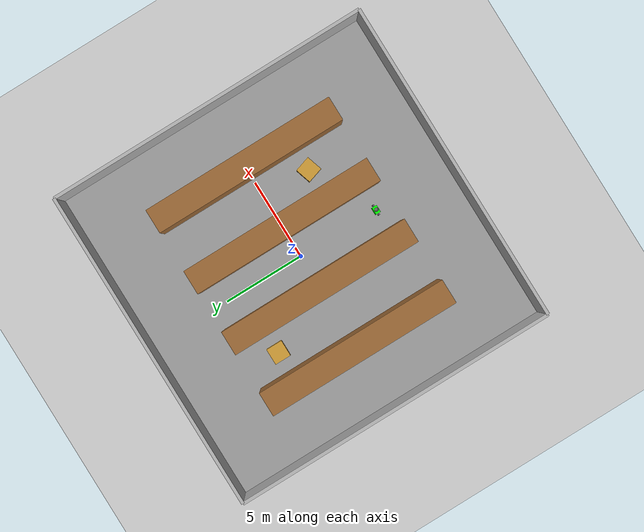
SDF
<?xml version="1.0" ?>
<sdf version="1.6">
  <world name="warehouse">
    <physics type="ode">
      <max_step_size>0.001</max_step_size>
      <real_time_factor>1</real_time_factor>
      <real_time_update_rate>1000</real_time_update_rate>
    </physics>

    <include><uri>model://sun</uri></include>
    <include><uri>model://ground_plane</uri></include>

    <!-- Warehouse Floor -->
    <model name="warehouse_floor">
      <static>true</static>
      <pose>0 0 0.01 0 0 0</pose>
      <link name="floor_link">
        <collision name="collision">
          <geometry><box><size>20 20 0.02</size></box></geometry>
        </collision>
        <visual name="visual">
          <geometry><box><size>20 20 0.02</size></box></geometry>
          <material><ambient>0.5 0.5 0.5 1</ambient><diffuse>0.6 0.6 0.6 1</diffuse></material>
        </visual>
      </link>
    </model>

    <!-- Walls -->
    <model name="wall_north">
      <static>true</static>
      <pose>0 10 1 0 0 0</pose>
      <link name="link">
        <collision name="collision"><geometry><box><size>20 0.2 2</size></box></geometry></collision>
        <visual name="visual"><geometry><box><size>20 0.2 2</size></box></geometry><material><ambient>0.7 0.7 0.7 1</ambient></material></visual>
      </link>
    </model>
    <model name="wall_south">
      <static>true</static>
      <pose>0 -10 1 0 0 0</pose>
      <link name="link">
        <collision name="collision"><geometry><box><size>20 0.2 2</size></box></geometry></collision>
        <visual name="visual"><geometry><box><size>20 0.2 2</size></box></geometry><material><ambient>0.7 0.7 0.7 1</ambient></material></visual>
      </link>
    </model>
    <model name="wall_east">
      <static>true</static>
      <pose>10 0 1 0 0 1.5708</pose>
      <link name="link">
        <collision name="collision"><geometry><box><size>20 0.2 2</size></box></geometry></collision>
        <visual name="visual"><geometry><box><size>20 0.2 2</size></box></geometry><material><ambient>0.7 0.7 0.7 1</ambient></material></visual>
      </link>
    </model>
    <model name="wall_west">
      <static>true</static>
      <pose>-10 0 1 0 0 1.5708</pose>
      <link name="link">
        <collision name="collision"><geometry><box><size>20 0.2 2</size></box></geometry></collision>
        <visual name="visual"><geometry><box><size>20 0.2 2</size></box></geometry><material><ambient>0.7 0.7 0.7 1</ambient></material></visual>
      </link>
    </model>

    <!-- Shelves -->
    <model name="shelf_1"><static>true</static><pose>-6 0 1 0 0 0</pose><link name="link"><collision name="c"><geometry><box><size>1.5 12 2</size></box></geometry></collision><visual name="v"><geometry><box><size>1.5 12 2</size></box></geometry><material><ambient>0.6 0.4 0.2 1</ambient></material></visual></link></model>
    <model name="shelf_2"><static>true</static><pose>-2 0 1 0 0 0</pose><link name="link"><collision name="c"><geometry><box><size>1.5 12 2</size></box></geometry></collision><visual name="v"><geometry><box><size>1.5 12 2</size></box></geometry><material><ambient>0.6 0.4 0.2 1</ambient></material></visual></link></model>
    <model name="shelf_3"><static>true</static><pose>2 0 1 0 0 0</pose><link name="link"><collision name="c"><geometry><box><size>1.5 12 2</size></box></geometry></collision><visual name="v"><geometry><box><size>1.5 12 2</size></box></geometry><material><ambient>0.6 0.4 0.2 1</ambient></material></visual></link></model>
    <model name="shelf_4"><static>true</static><pose>6 0 1 0 0 0</pose><link name="link"><collision name="c"><geometry><box><size>1.5 12 2</size></box></geometry></collision><visual name="v"><geometry><box><size>1.5 12 2</size></box></geometry><material><ambient>0.6 0.4 0.2 1</ambient></material></visual></link></model>

    <!-- Pallets -->
    <model name="pallet_1"><static>true</static><pose>-4 4 0.25 0 0 0</pose><link name="link"><collision name="c"><geometry><box><size>1 1 0.5</size></box></geometry></collision><visual name="v"><geometry><box><size>1 1 0.5</size></box></geometry><material><ambient>0.8 0.6 0.2 1</ambient></material></visual></link></model>
    <model name="pallet_2"><static>true</static><pose>4 -3 0.25 0 0 0.3</pose><link name="link"><collision name="c"><geometry><box><size>1 1 0.5</size></box></geometry></collision><visual name="v"><geometry><box><size>1 1 0.5</size></box></geometry><material><ambient>0.8 0.6 0.2 1</ambient></material></visual></link></model>

    <!-- COLOR TARGET: Bright Neon Green "Person" for Color-Based Tracking -->
    <!-- HSV: Hue ~60 (green), High Saturation, High Value                  -->
    <!-- RGB: (0, 1, 0) = Pure Green for easy HSV detection                 -->
    <model name="target_person">
      <static>false</static>
      <pose>0 -5 0 0 0 0</pose>
      <link name="body">
        <pose>0 0 0.9 0 0 0</pose>
        <inertial>
          <mass>70</mass>
          <inertia>
            <ixx>10</ixx><ixy>0</ixy><ixz>0</ixz>
            <iyy>10</iyy><iyz>0</iyz><izz>5</izz>
          </inertia>
        </inertial>
        <collision name="collision">
          <geometry><cylinder><radius>0.3</radius><length>1.7</length></cylinder></geometry>
        </collision>

        <!-- MAIN BODY: Bright Neon Green Vest/Torso - PRIMARY TRACKING TARGET -->
        <visual name="torso">
          <pose>0 0 0.1 0 0 0</pose>
          <geometry><box><size>0.45 0.3 0.6</size></box></geometry>
          <material>
            <!-- Neon Green: RGB(0, 255, 0) -> normalized (0, 1, 0) -->
            <ambient>0.0 1.0 0.0 1</ambient>
            <diffuse>0.0 1.0 0.0 1</diffuse>
            <specular>0.1 0.1 0.1 1</specular>
            <emissive>0.0 0.3 0.0 1</emissive>
          </material>
        </visual>

        <!-- Head: Dark gray (not tracked) -->
        <visual name="head">
          <pose>0 0 0.5 0 0 0</pose>
          <geometry><sphere><radius>0.12</radius></sphere></geometry>
          <material>
            <ambient>0.3 0.3 0.3 1</ambient>
            <diffuse>0.4 0.4 0.4 1</diffuse>
          </material>
        </visual>

        <!-- Arms: Dark gray (not tracked) -->
        <visual name="left_arm">
          <pose>0.3 0 0.05 0 0 0</pose>
          <geometry><cylinder><radius>0.05</radius><length>0.5</length></cylinder></geometry>
          <material><ambient>0.3 0.3 0.3 1</ambient><diffuse>0.4 0.4 0.4 1</diffuse></material>
        </visual>
        <visual name="right_arm">
          <pose>-0.3 0 0.05 0 0 0</pose>
          <geometry><cylinder><radius>0.05</radius><length>0.5</length></cylinder></geometry>
          <material><ambient>0.3 0.3 0.3 1</ambient><diffuse>0.4 0.4 0.4 1</diffuse></material>
        </visual>

        <!-- Legs: Dark gray (not tracked) -->
        <visual name="left_leg">
          <pose>0.1 0 -0.55 0 0 0</pose>
          <geometry><cylinder><radius>0.07</radius><length>0.55</length></cylinder></geometry>
          <material><ambient>0.2 0.2 0.2 1</ambient><diffuse>0.3 0.3 0.3 1</diffuse></material>
        </visual>
        <visual name="right_leg">
          <pose>-0.1 0 -0.55 0 0 0</pose>
          <geometry><cylinder><radius>0.07</radius><length>0.55</length></cylinder></geometry>
          <material><ambient>0.2 0.2 0.2 1</ambient><diffuse>0.3 0.3 0.3 1</diffuse></material>
        </visual>
      </link>

      <!-- Movement plugin for teleoperation -->
      <plugin name="target_movement" filename="libgazebo_ros_planar_move.so">
        <ros>
          <namespace>/target</namespace>
          <remapping>cmd_vel:=cmd_vel</remapping>
          <remapping>odom:=odom</remapping>
        </ros>
        <update_rate>100</update_rate>
        <publish_rate>10</publish_rate>
        <publish_odom>true</publish_odom>
        <publish_odom_tf>true</publish_odom_tf>
        <odometry_frame>odom</odometry_frame>
        <robot_base_frame>body</robot_base_frame>
      </plugin>
    </model>

    <gui>
      <camera name="user_camera">
        <pose>-12 -8 10 0 0.6 0.4</pose>
      </camera>
    </gui>
  </world>
</sdf>
